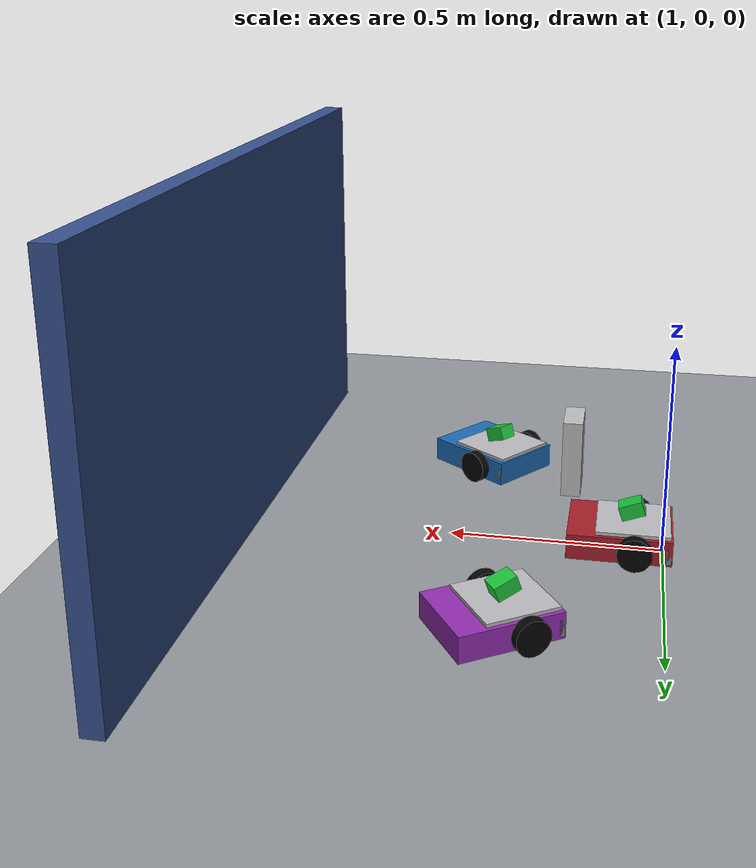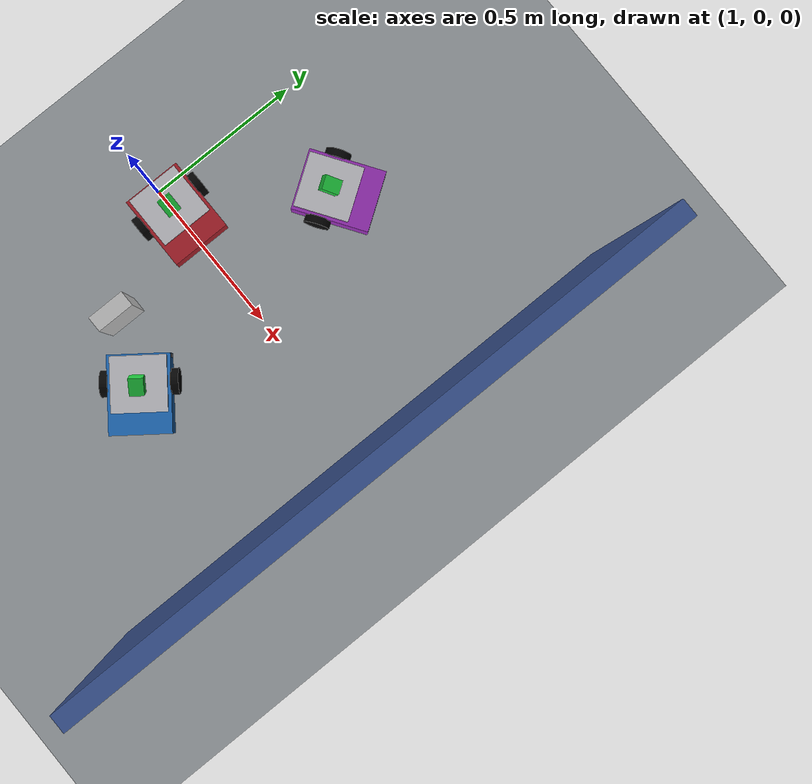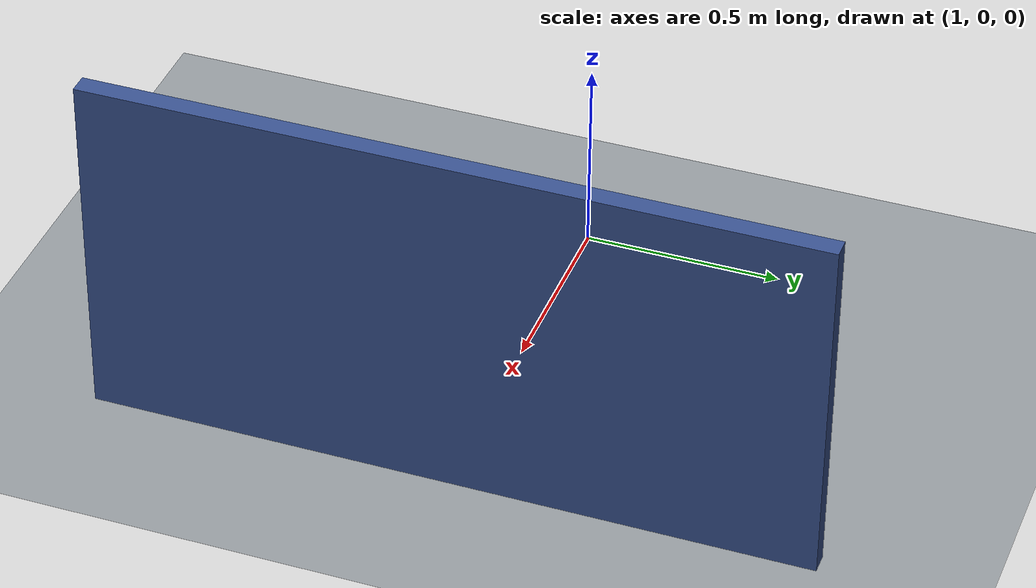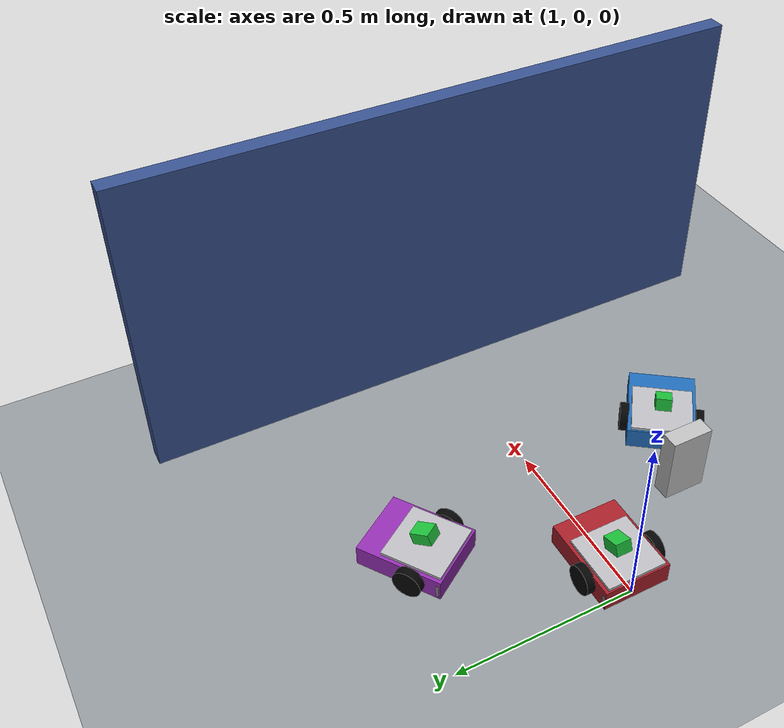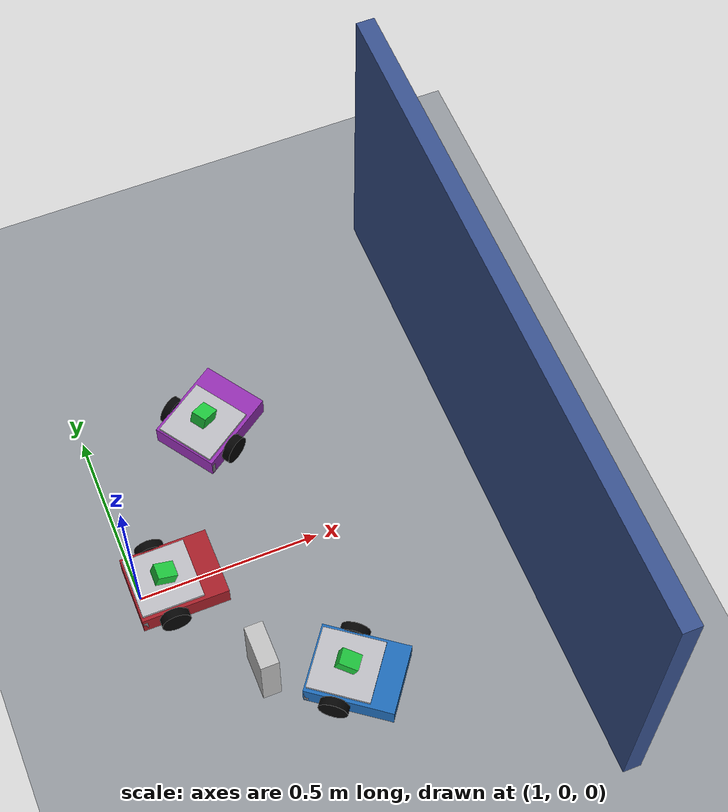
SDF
<?xml version="1.0"?>
<sdf version="1.8">
  <world name="footbot_world">
    <gravity>0 0 -9.81</gravity>
    <magnetic_field>0 0 0</magnetic_field>
    <atmosphere type="adiabatic"/>

    <plugin
      filename="ignition-gazebo-physics-system"
      name="ignition::gazebo::systems::Physics"/>
    <plugin
      filename="ignition-gazebo-user-commands-system"
      name="ignition::gazebo::systems::UserCommands"/>
    <plugin
      filename="ignition-gazebo-scene-broadcaster-system"
      name="ignition::gazebo::systems::SceneBroadcaster"/>
    <plugin
      filename="ignition-gazebo-sensors-system"
      name="ignition::gazebo::systems::Sensors">
      <render_engine>ogre2</render_engine>
    </plugin>

    <physics name="default_physics" type="ignored">
      <max_step_size>0.001</max_step_size>
      <real_time_factor>1.0</real_time_factor>
    </physics>

    <scene>
      <ambient>0.65 0.65 0.65 1.0</ambient>
      <background>0.76 0.80 0.84 1.0</background>
      <shadows>true</shadows>
    </scene>

    <light name="sun" type="directional">
      <cast_shadows>true</cast_shadows>
      <pose>0 0 6 0 0 0</pose>
      <diffuse>0.9 0.9 0.9 1</diffuse>
      <specular>0.2 0.2 0.2 1</specular>
      <attenuation>
        <range>1000</range>
        <constant>0.9</constant>
        <linear>0.01</linear>
        <quadratic>0.001</quadratic>
      </attenuation>
      <direction>-0.4 0.1 -0.9</direction>
    </light>

    <model name="ground_plane">
      <static>true</static>
      <link name="ground_link">
        <collision name="ground_collision">
          <geometry>
            <plane>
              <normal>0 0 1</normal>
              <size>8 8</size>
            </plane>
          </geometry>
        </collision>
        <visual name="ground_visual">
          <geometry>
            <plane>
              <normal>0 0 1</normal>
              <size>8 8</size>
            </plane>
          </geometry>
          <material>
            <ambient>0.46 0.48 0.50 1</ambient>
            <diffuse>0.58 0.60 0.62 1</diffuse>
          </material>
        </visual>
      </link>
    </model>

    <model name="blue_backdrop">
      <static>true</static>
      <pose>2.0 0 0.45 0 0 0</pose>
      <link name="link">
        <collision name="collision">
          <geometry>
            <box>
              <size>0.05 1.8 0.9</size>
            </box>
          </geometry>
        </collision>
        <visual name="visual">
          <geometry>
            <box>
              <size>0.05 1.8 0.9</size>
            </box>
          </geometry>
          <material>
            <ambient>0.22 0.32 0.56 1</ambient>
            <diffuse>0.22 0.32 0.56 1</diffuse>
          </material>
        </visual>
      </link>
    </model>

    <model name="opponent_footbot_center">
      <static>true</static>
      <pose>1.10 0 0 0 0 3.14159</pose>
      <link name="robot_body">
        <collision name="base_collision">
          <pose>0 0 0.04 0 0 0</pose>
          <geometry>
            <box>
              <size>0.24 0.19 0.06</size>
            </box>
          </geometry>
        </collision>
        <visual name="base">
          <pose>0 0 0.04 0 0 0</pose>
          <geometry>
            <box>
              <size>0.24 0.19 0.06</size>
            </box>
          </geometry>
          <material>
            <ambient>0.65 0.12 0.16 1</ambient>
            <diffuse>0.65 0.12 0.16 1</diffuse>
          </material>
        </visual>
        <visual name="top_plate">
          <pose>0.03 0 0.074 0 0 0</pose>
          <geometry>
            <box>
              <size>0.17 0.17 0.008</size>
            </box>
          </geometry>
          <material>
            <ambient>0.74 0.74 0.76 1</ambient>
            <diffuse>0.74 0.74 0.76 1</diffuse>
          </material>
        </visual>
        <visual name="front_panel">
          <pose>0.112 0 0.034 0 0 0</pose>
          <geometry>
            <box>
              <size>0.012 0.19 0.04</size>
            </box>
          </geometry>
          <material>
            <ambient>0.50 0.50 0.52 1</ambient>
            <diffuse>0.50 0.50 0.52 1</diffuse>
          </material>
        </visual>
        <visual name="left_wheel">
          <pose>0.035 0.105 0.04 1.5708 0 0</pose>
          <geometry>
            <cylinder>
              <radius>0.04</radius>
              <length>0.024</length>
            </cylinder>
          </geometry>
          <material>
            <ambient>0.02 0.02 0.02 1</ambient>
            <diffuse>0.02 0.02 0.02 1</diffuse>
          </material>
        </visual>
        <visual name="right_wheel">
          <pose>0.035 -0.105 0.04 1.5708 0 0</pose>
          <geometry>
            <cylinder>
              <radius>0.04</radius>
              <length>0.024</length>
            </cylinder>
          </geometry>
          <material>
            <ambient>0.02 0.02 0.02 1</ambient>
            <diffuse>0.02 0.02 0.02 1</diffuse>
          </material>
        </visual>
        <visual name="camera_body">
          <pose>0.025 0 0.104 0 -0.35 0</pose>
          <geometry>
            <box>
              <size>0.055 0.045 0.035</size>
            </box>
          </geometry>
          <material>
            <ambient>0.12 0.78 0.24 1</ambient>
            <diffuse>0.12 0.78 0.24 1</diffuse>
          </material>
        </visual>
        <visual name="camera_lens">
          <pose>0.044 0 0.102 0 -0.35 0</pose>
          <geometry>
            <box>
              <size>0.020 0.032 0.018</size>
            </box>
          </geometry>
          <material>
            <ambient>0.02 0.02 0.02 1</ambient>
            <diffuse>0.02 0.02 0.02 1</diffuse>
          </material>
        </visual>
        <visual name="rear_caster">
          <pose>-0.095 0 0.01 0 0 0</pose>
          <geometry>
            <sphere>
              <radius>0.01</radius>
            </sphere>
          </geometry>
          <material>
            <ambient>0.45 0.45 0.45 1</ambient>
            <diffuse>0.45 0.45 0.45 1</diffuse>
          </material>
        </visual>
      </link>
    </model>

    <model name="opponent_footbot_left">
      <static>true</static>
      <pose>1.35 0.42 0 0 0 -2.55</pose>
      <link name="robot_body">
        <collision name="base_collision">
          <pose>0 0 0.04 0 0 0</pose>
          <geometry>
            <box>
              <size>0.24 0.19 0.06</size>
            </box>
          </geometry>
        </collision>
        <visual name="base">
          <pose>0 0 0.04 0 0 0</pose>
          <geometry><box><size>0.24 0.19 0.06</size></box></geometry>
          <material><ambient>0.58 0.18 0.70 1</ambient><diffuse>0.58 0.18 0.70 1</diffuse></material>
        </visual>
        <visual name="top_plate">
          <pose>0.03 0 0.074 0 0 0</pose>
          <geometry><box><size>0.17 0.17 0.008</size></box></geometry>
          <material><ambient>0.74 0.74 0.76 1</ambient><diffuse>0.74 0.74 0.76 1</diffuse></material>
        </visual>
        <visual name="front_panel">
          <pose>0.112 0 0.034 0 0 0</pose>
          <geometry><box><size>0.012 0.19 0.04</size></box></geometry>
          <material><ambient>0.50 0.50 0.52 1</ambient><diffuse>0.50 0.50 0.52 1</diffuse></material>
        </visual>
        <visual name="left_wheel">
          <pose>0.035 0.105 0.04 1.5708 0 0</pose>
          <geometry><cylinder><radius>0.04</radius><length>0.024</length></cylinder></geometry>
          <material><ambient>0.02 0.02 0.02 1</ambient><diffuse>0.02 0.02 0.02 1</diffuse></material>
        </visual>
        <visual name="right_wheel">
          <pose>0.035 -0.105 0.04 1.5708 0 0</pose>
          <geometry><cylinder><radius>0.04</radius><length>0.024</length></cylinder></geometry>
          <material><ambient>0.02 0.02 0.02 1</ambient><diffuse>0.02 0.02 0.02 1</diffuse></material>
        </visual>
        <visual name="camera_body">
          <pose>0.025 0 0.104 0 -0.35 0</pose>
          <geometry><box><size>0.055 0.045 0.035</size></box></geometry>
          <material><ambient>0.12 0.78 0.24 1</ambient><diffuse>0.12 0.78 0.24 1</diffuse></material>
        </visual>
        <visual name="camera_lens">
          <pose>0.044 0 0.102 0 -0.35 0</pose>
          <geometry><box><size>0.020 0.032 0.018</size></box></geometry>
          <material><ambient>0.02 0.02 0.02 1</ambient><diffuse>0.02 0.02 0.02 1</diffuse></material>
        </visual>
        <visual name="rear_caster">
          <pose>-0.095 0 0.01 0 0 0</pose>
          <geometry><sphere><radius>0.01</radius></sphere></geometry>
          <material><ambient>0.45 0.45 0.45 1</ambient><diffuse>0.45 0.45 0.45 1</diffuse></material>
        </visual>
      </link>
    </model>

    <model name="opponent_footbot_right_occluded">
      <static>true</static>
      <pose>1.45 -0.42 0 0 0 2.50</pose>
      <link name="robot_body">
        <collision name="base_collision">
          <pose>0 0 0.04 0 0 0</pose>
          <geometry><box><size>0.24 0.19 0.06</size></box></geometry>
        </collision>
        <visual name="base">
          <pose>0 0 0.04 0 0 0</pose>
          <geometry><box><size>0.24 0.19 0.06</size></box></geometry>
          <material><ambient>0.12 0.42 0.72 1</ambient><diffuse>0.12 0.42 0.72 1</diffuse></material>
        </visual>
        <visual name="top_plate">
          <pose>0.03 0 0.074 0 0 0</pose>
          <geometry><box><size>0.17 0.17 0.008</size></box></geometry>
          <material><ambient>0.74 0.74 0.76 1</ambient><diffuse>0.74 0.74 0.76 1</diffuse></material>
        </visual>
        <visual name="front_panel">
          <pose>0.112 0 0.034 0 0 0</pose>
          <geometry><box><size>0.012 0.19 0.04</size></box></geometry>
          <material><ambient>0.50 0.50 0.52 1</ambient><diffuse>0.50 0.50 0.52 1</diffuse></material>
        </visual>
        <visual name="left_wheel">
          <pose>0.035 0.105 0.04 1.5708 0 0</pose>
          <geometry><cylinder><radius>0.04</radius><length>0.024</length></cylinder></geometry>
          <material><ambient>0.02 0.02 0.02 1</ambient><diffuse>0.02 0.02 0.02 1</diffuse></material>
        </visual>
        <visual name="right_wheel">
          <pose>0.035 -0.105 0.04 1.5708 0 0</pose>
          <geometry><cylinder><radius>0.04</radius><length>0.024</length></cylinder></geometry>
          <material><ambient>0.02 0.02 0.02 1</ambient><diffuse>0.02 0.02 0.02 1</diffuse></material>
        </visual>
        <visual name="camera_body">
          <pose>0.025 0 0.104 0 -0.35 0</pose>
          <geometry><box><size>0.055 0.045 0.035</size></box></geometry>
          <material><ambient>0.12 0.78 0.24 1</ambient><diffuse>0.12 0.78 0.24 1</diffuse></material>
        </visual>
        <visual name="camera_lens">
          <pose>0.044 0 0.102 0 -0.35 0</pose>
          <geometry><box><size>0.020 0.032 0.018</size></box></geometry>
          <material><ambient>0.02 0.02 0.02 1</ambient><diffuse>0.02 0.02 0.02 1</diffuse></material>
        </visual>
        <visual name="rear_caster">
          <pose>-0.095 0 0.01 0 0 0</pose>
          <geometry><sphere><radius>0.01</radius></sphere></geometry>
          <material><ambient>0.45 0.45 0.45 1</ambient><diffuse>0.45 0.45 0.45 1</diffuse></material>
        </visual>
      </link>
    </model>

    <model name="partial_occluder">
      <static>true</static>
      <pose>1.23 -0.32 0.10 0 0 0</pose>
      <link name="link">
        <collision name="collision">
          <geometry>
            <box>
              <size>0.05 0.12 0.20</size>
            </box>
          </geometry>
        </collision>
        <visual name="visual">
          <geometry>
            <box>
              <size>0.05 0.12 0.20</size>
            </box>
          </geometry>
          <material>
            <ambient>0.75 0.75 0.75 1</ambient>
            <diffuse>0.75 0.75 0.75 1</diffuse>
          </material>
        </visual>
      </link>
    </model>
  </world>
</sdf>
